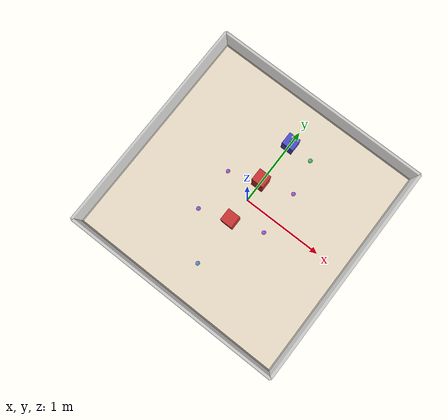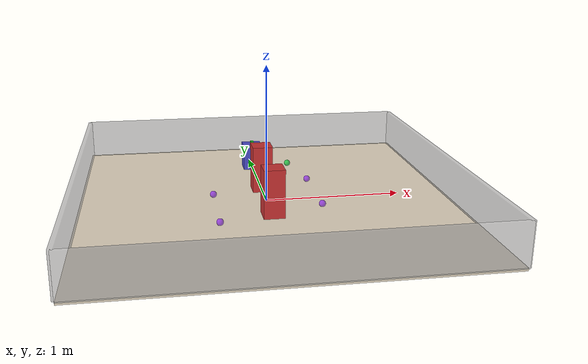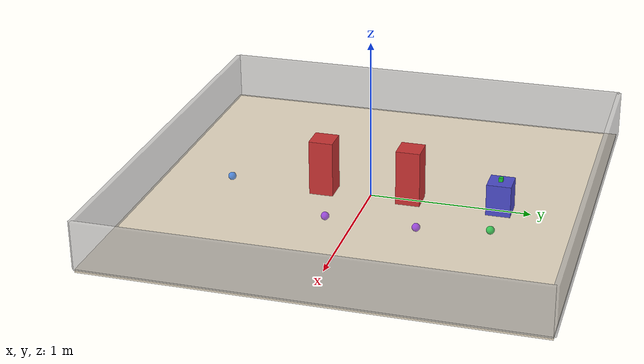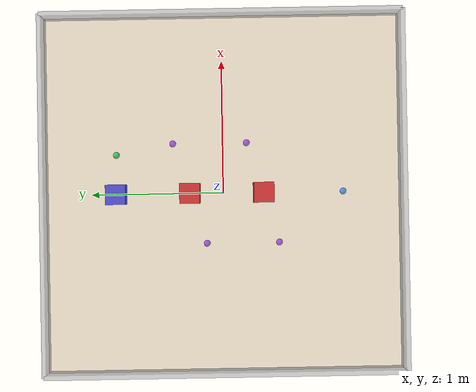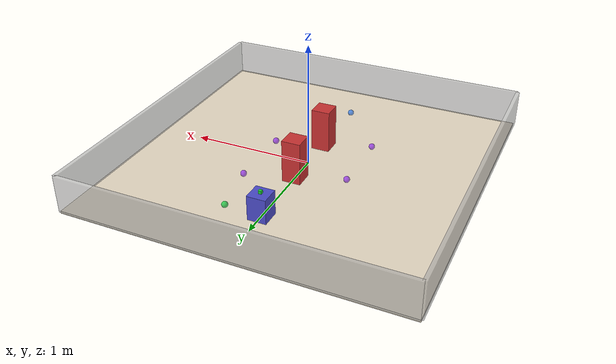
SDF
<?xml version="1.0" ?>
<!--
  arena_world.world — v2
  Cambios: O1 y O2 centradas en x=0
  O1: (0.00, +0.25)  O2: (0.00, -0.30)
-->
<sdf version="1.7">
  <world name="arena_world">

  <plugin filename="gz-sim-physics-system" name="gz::sim::systems::Physics"/>
    <plugin filename="gz-sim-user-commands-system" name="gz::sim::systems::UserCommands"/>
    <plugin filename="gz-sim-scene-broadcaster-system" name="gz::sim::systems::SceneBroadcaster"/>
    <plugin filename="gz-sim-sensors-system" name="gz::sim::systems::Sensors">
      <render_engine>ogre2</render_engine>
    </plugin>
    <plugin filename="gz-sim-imu-system" name="gz::sim::systems::Imu"/>
    <!-- Necesario para los sensores de contacto de paredes/obstáculos (detección de colisiones) -->
    <plugin filename="gz-sim-contact-system" name="gz::sim::systems::Contact"/>

    <gravity>0 0 -9.81</gravity>
    <physics type="ode">
      <max_step_size>0.001</max_step_size>
      <real_time_factor>1.0</real_time_factor>
      <real_time_update_rate>1000</real_time_update_rate>
      <ode>
        <solver>
          <type>quick</type>
          <iters>50</iters>
          <sor>1.4</sor>
        </solver>
      </ode>
    </physics>

    <light name="sun" type="directional">
      <cast_shadows>true</cast_shadows>
      <pose>0 0 10 0 0 0</pose>
      <diffuse>0.9 0.9 0.9 1</diffuse>
      <specular>0.3 0.3 0.3 1</specular>
      <direction>-0.5 0.2 -0.9</direction>
    </light>
    <light name="ambient_fill" type="directional">
      <cast_shadows>false</cast_shadows>
      <pose>0 0 5 0 0 0</pose>
      <diffuse>0.4 0.4 0.4 1</diffuse>
      <specular>0 0 0 1</specular>
      <direction>0 0 -1</direction>
    </light>

    <!-- Suelo melamina mu=0.4 -->
    <model name="arena_floor">
      <static>true</static>
      <pose>0 0 0 0 0 0</pose>
      <link name="link">
        <collision name="collision">
          <geometry><box><size>2.7 2.7 0.02</size></box></geometry>
          <pose>0 0 -0.01 0 0 0</pose>
          <surface>
            <friction>
              <ode>
                <mu>0.6</mu><mu2>0.45</mu2>
                <fdir1>1 0 0</fdir1>
              </ode>
            </friction>
            <contact>
              <ode>
                <kp>1e6</kp><kd>100</kd>
                <min_depth>0.001</min_depth>
                <max_vel>1.0</max_vel>
              </ode>
            </contact>
          </surface>
        </collision>
        <visual name="visual">
          <geometry><box><size>2.7 2.7 0.02</size></box></geometry>
          <pose>0 0 -0.01 0 0 0</pose>
          <material>
            <ambient>0.92 0.87 0.78 1</ambient>
            <diffuse>0.92 0.87 0.78 1</diffuse>
            <specular>0.3 0.3 0.3 1</specular>
          </material>
        </visual>
      </link>
    </model>

    <!-- Paredes perimetrales -->
    <model name="wall_north">
      <static>true</static><pose>0 1.35 0.15 0 0 0</pose>
      <link name="link">
        <collision name="c"><geometry><box><size>2.7 0.03 0.30</size></box></geometry></collision>
        <visual name="v"><geometry><box><size>2.7 0.03 0.30</size></box></geometry>
          <material><ambient>0.7 0.7 0.7 0.6</ambient><diffuse>0.7 0.7 0.7 0.6</diffuse></material>
        </visual>
        <sensor name="contact_sensor" type="contact">
          <always_on>true</always_on>
          <update_rate>50</update_rate>
          <contact><collision>c</collision><topic>/contacts/wall_north</topic></contact>
        </sensor>
      </link>
    </model>
    <model name="wall_south">
      <static>true</static><pose>0 -1.35 0.15 0 0 0</pose>
      <link name="link">
        <collision name="c"><geometry><box><size>2.7 0.03 0.30</size></box></geometry></collision>
        <visual name="v"><geometry><box><size>2.7 0.03 0.30</size></box></geometry>
          <material><ambient>0.7 0.7 0.7 0.6</ambient><diffuse>0.7 0.7 0.7 0.6</diffuse></material>
        </visual>
        <sensor name="contact_sensor" type="contact">
          <always_on>true</always_on>
          <update_rate>50</update_rate>
          <contact><collision>c</collision><topic>/contacts/wall_south</topic></contact>
        </sensor>
      </link>
    </model>
    <model name="wall_east">
      <static>true</static><pose>1.35 0 0.15 0 0 0</pose>
      <link name="link">
        <collision name="c"><geometry><box><size>0.03 2.7 0.30</size></box></geometry></collision>
        <visual name="v"><geometry><box><size>0.03 2.7 0.30</size></box></geometry>
          <material><ambient>0.7 0.7 0.7 0.6</ambient><diffuse>0.7 0.7 0.7 0.6</diffuse></material>
        </visual>
        <sensor name="contact_sensor" type="contact">
          <always_on>true</always_on>
          <update_rate>50</update_rate>
          <contact><collision>c</collision><topic>/contacts/wall_east</topic></contact>
        </sensor>
      </link>
    </model>
    <model name="wall_west">
      <static>true</static><pose>-1.35 0 0.15 0 0 0</pose>
      <link name="link">
        <collision name="c"><geometry><box><size>0.03 2.7 0.30</size></box></geometry></collision>
        <visual name="v"><geometry><box><size>0.03 2.7 0.30</size></box></geometry>
          <material><ambient>0.7 0.7 0.7 0.6</ambient><diffuse>0.7 0.7 0.7 0.6</diffuse></material>
        </visual>
        <sensor name="contact_sensor" type="contact">
          <always_on>true</always_on>
          <update_rate>50</update_rate>
          <contact><collision>c</collision><topic>/contacts/wall_west</topic></contact>
        </sensor>
      </link>
    </model>

    <!-- Obstáculo 1 — centro x=0, y=+0.25 -->
    <model name="obstacle_1">
      <static>true</static>
      <pose>0.00 0.25 0.175 0 0 0</pose>
      <link name="link">
        <collision name="collision">
          <geometry><box><size>0.15 0.15 0.35</size></box></geometry>
          <surface><friction><ode><mu>0.8</mu><mu2>0.8</mu2></ode></friction></surface>
        </collision>
        <visual name="visual">
          <geometry><box><size>0.15 0.15 0.35</size></box></geometry>
          <material><ambient>0.8 0.2 0.2 1</ambient><diffuse>0.8 0.2 0.2 1</diffuse></material>
        </visual>
        <sensor name="contact_sensor" type="contact">
          <always_on>true</always_on>
          <update_rate>50</update_rate>
          <contact><collision>collision</collision><topic>/contacts/obstacle_1</topic></contact>
        </sensor>
      </link>
    </model>

    <!-- Obstáculo 2 — centro x=0, y=-0.30 -->
    <model name="obstacle_2">
      <static>true</static>
      <pose>0.00 -0.30 0.175 0 0 0</pose>
      <link name="link">
        <collision name="collision">
          <geometry><box><size>0.15 0.15 0.35</size></box></geometry>
          <surface><friction><ode><mu>0.8</mu><mu2>0.8</mu2></ode></friction></surface>
        </collision>
        <visual name="visual">
          <geometry><box><size>0.15 0.15 0.35</size></box></geometry>
          <material><ambient>0.8 0.2 0.2 1</ambient><diffuse>0.8 0.2 0.2 1</diffuse></material>
        </visual>
        <sensor name="contact_sensor" type="contact">
          <always_on>true</always_on>
          <update_rate>50</update_rate>
          <contact><collision>collision</collision><topic>/contacts/obstacle_2</topic></contact>
        </sensor>
      </link>
    </model>

    <!-- Pedestal 15×15×20cm en y=+0.81 -->
    <model name="pedestal">
      <static>true</static>
      <pose>0.0 0.81 0.10 0 0 0</pose>
      <link name="link">
        <collision name="collision">
          <geometry><box><size>0.15 0.15 0.20</size></box></geometry>
          <surface><friction><ode><mu>0.6</mu><mu2>0.6</mu2></ode></friction></surface>
        </collision>
        <visual name="visual">
          <geometry><box><size>0.15 0.15 0.20</size></box></geometry>
          <material><ambient>0.3 0.3 0.8 1</ambient><diffuse>0.3 0.3 0.8 1</diffuse></material>
        </visual>
        <sensor name="contact_sensor" type="contact">
          <always_on>true</always_on>
          <update_rate>50</update_rate>
          <contact><collision>collision</collision><topic>/contacts/pedestal</topic></contact>
        </sensor>
      </link>
    </model>

    <!-- Cubo objetivo 2.5×2.5×2.5cm sobre el pedestal -->
    <model name="target_cube">
      <static>false</static>
      <pose>0.0 0.81 0.2125 0 0 0</pose>
      <link name="link">
        <inertial>
          <mass>0.050</mass>
          <inertia>
            <ixx>5.2e-6</ixx><ixy>0</ixy><ixz>0</ixz>
            <iyy>5.2e-6</iyy><iyz>0</iyz><izz>5.2e-6</izz>
          </inertia>
        </inertial>
        <collision name="collision">
          <geometry><box><size>0.025 0.025 0.025</size></box></geometry>
          <surface>
            <friction><ode><mu>0.7</mu><mu2>0.7</mu2></ode></friction>
            <contact><ode><kp>1e5</kp><kd>10</kd></ode></contact>
          </surface>
        </collision>
        <visual name="visual">
          <geometry><box><size>0.025 0.025 0.025</size></box></geometry>
          <material><ambient>0.1 0.8 0.2 1</ambient><diffuse>0.1 0.8 0.2 1</diffuse></material>
        </visual>
      </link>
    </model>

    <!-- Marcadores visuales de waypoints -->
    <model name="wp1"><static>true</static><pose>0.00 -0.91 0.02 0 0 0</pose>
      <link name="link"><visual name="v"><geometry><sphere><radius>0.025</radius></sphere></geometry>
        <material><ambient>0 0.4 1 0.6</ambient><diffuse>0 0.4 1 0.6</diffuse></material></visual></link></model>

    <model name="wp2"><static>true</static><pose>-0.38 -0.42 0.02 0 0 0</pose>
      <link name="link"><visual name="v"><geometry><sphere><radius>0.025</radius></sphere></geometry>
        <material><ambient>0.5 0 1 0.6</ambient><diffuse>0.5 0 1 0.6</diffuse></material></visual></link></model>

    <model name="wp3"><static>true</static><pose>0.38 -0.18 0.02 0 0 0</pose>
      <link name="link"><visual name="v"><geometry><sphere><radius>0.025</radius></sphere></geometry>
        <material><ambient>0.5 0 1 0.6</ambient><diffuse>0.5 0 1 0.6</diffuse></material></visual></link></model>

    <model name="wp4"><static>true</static><pose>-0.38 0.13 0.02 0 0 0</pose>
      <link name="link"><visual name="v"><geometry><sphere><radius>0.025</radius></sphere></geometry>
        <material><ambient>0.5 0 1 0.6</ambient><diffuse>0.5 0 1 0.6</diffuse></material></visual></link></model>

    <model name="wp5"><static>true</static><pose>0.38 0.38 0.02 0 0 0</pose>
      <link name="link"><visual name="v"><geometry><sphere><radius>0.025</radius></sphere></geometry>
        <material><ambient>0.5 0 1 0.6</ambient><diffuse>0.5 0 1 0.6</diffuse></material></visual></link></model>

    <model name="wp6"><static>true</static><pose>0.30 0.81 0.02 0 0 0</pose>
      <link name="link"><visual name="v"><geometry><sphere><radius>0.025</radius></sphere></geometry>
        <material><ambient>0 0.8 0.2 0.7</ambient><diffuse>0 0.8 0.2 0.7</diffuse></material></visual></link></model>

    <scene>
      <ambient>0.5 0.5 0.5 1</ambient>
      <background>0.6 0.7 0.8 1</background>
      <shadows>true</shadows>
    </scene>

    <gui fullscreen="0">
      <camera name="user_camera">
        <pose>0 -3.5 4.5 0 0.75 1.57</pose>
        <view_controller>orbit</view_controller>
      </camera>
    </gui>

  </world>
</sdf>
